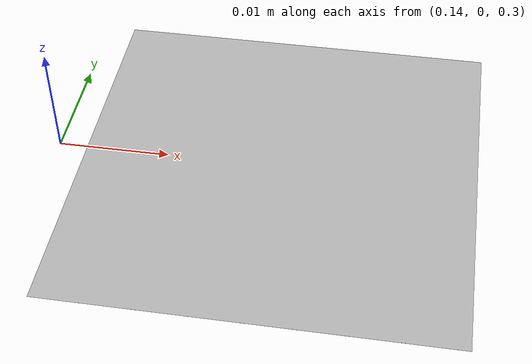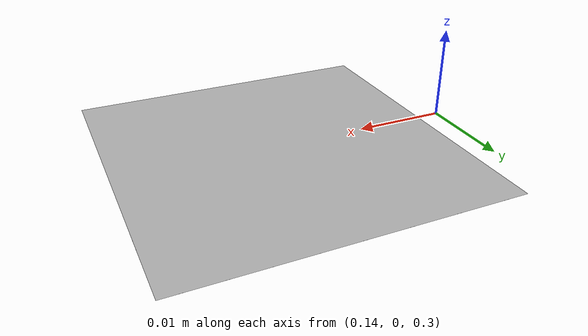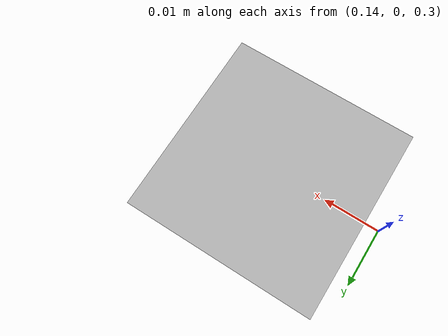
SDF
<?xml version="1.0"?>
<sdf version="1.7">
  <world name="default">
    <plugin
      filename="gz-sim-user-commands-system"
      name="gz::sim::systems::UserCommands">
    </plugin>
    <plugin
      filename="gz-sim-scene-broadcaster-system"
      name="gz::sim::systems::SceneBroadcaster">
    </plugin>
    <plugin
      filename="gz-sim-sensors-system"
      name="gz::sim::systems::Sensors">
      <render_engine>ogre2</render_engine>
    </plugin>
    <include>
      <uri>
        https://fuel.gazebosim.org/1.0/OpenRobotics/models/Ground Plane
      </uri>
    </include>

    <include>
      <uri>
        https://fuel.gazebosim.org/1.0/OpenRobotics/models/Sun
      </uri>
    </include>

    <include>
      <uri>model://aruco_marker_0</uri>
      <name>aruco_marker_instance</name>
      <pose>0.16 0 0.3 0 0 0</pose>
    </include>

    <gui fullscreen='0'>
      <camera name='user_camera'>
        <pose>1.5 -1.5 1.0 0 0.3 2.35</pose>
        <view_controller>orbit</view_controller>
        <projection_type>perspective</projection_type>
      </camera>
    </gui>

  </world>
</sdf>

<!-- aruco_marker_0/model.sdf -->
<sdf version='1.7'>
  <model name='aruco_marker_0'>
    <static>true</static>
    <link name='link'>
      <visual name='visual'>
        <geometry>
          <plane>
            <normal>0 0 1</normal>
            <size>0.035 0.035 0.001 </size>
          </plane>
        </geometry>
        <material>
          <pbr>
            <metal>
              <albedo_map>materials/textures/aruco_marker_0.jpg</albedo_map>
              <roughness>1.0</roughness>
            </metal>
          </pbr>
        </material>
      </visual>
      <collision name='collision'>
        <geometry>
          <box>
            <size>0.035 0.035 0.001</size>
          </box>
        </geometry>
      </collision>
    </link>
  </model>
</sdf>
